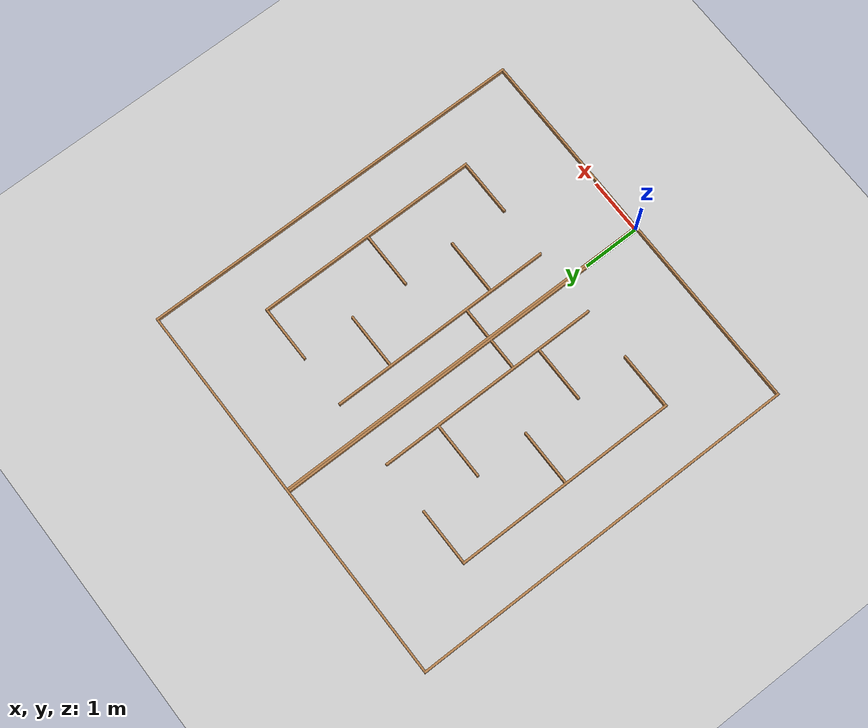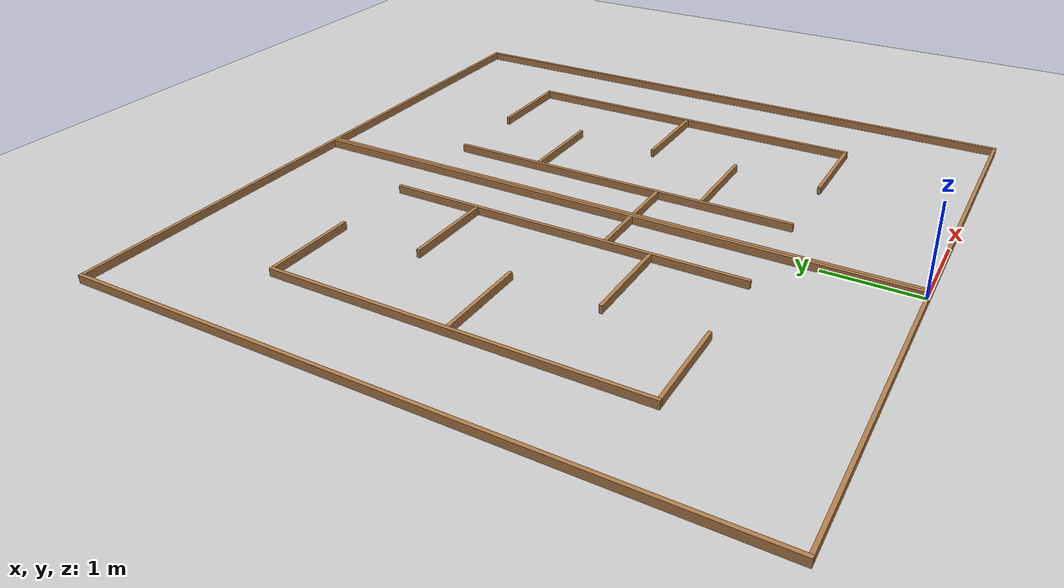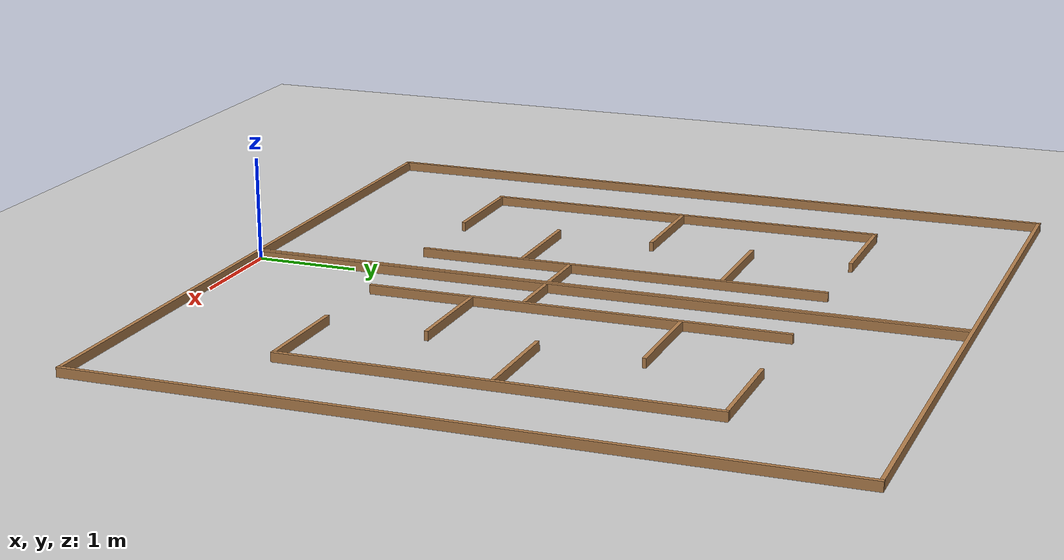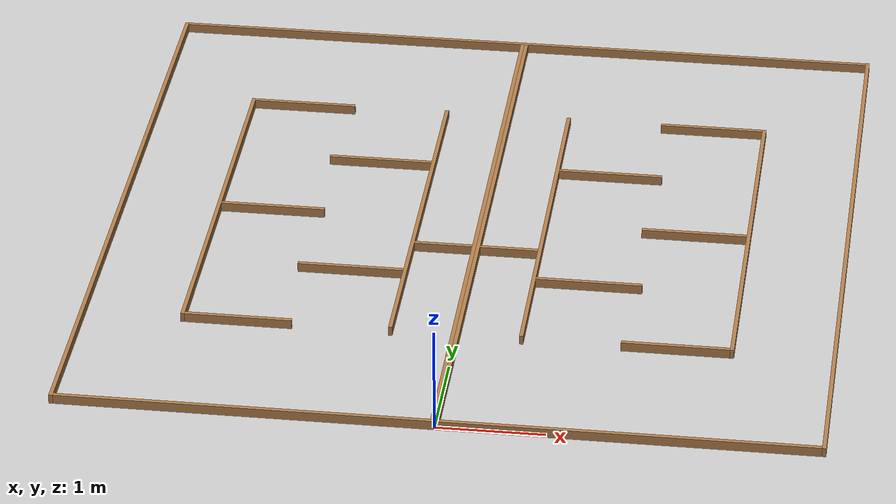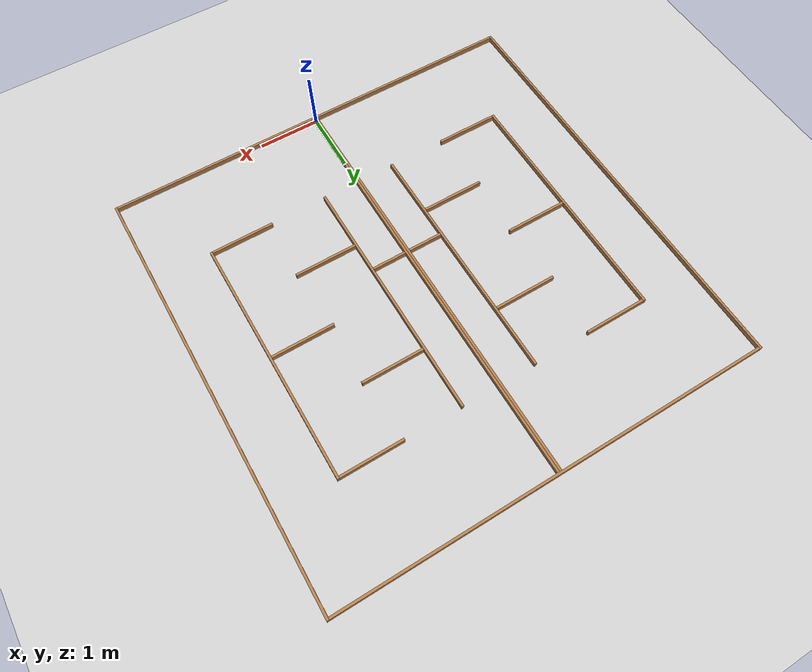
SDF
<?xml version="1.0"?>
<sdf version="1.6">
  <world name="default">
    <gravity>0 0 -9.8</gravity>

    <include>
      <uri>model://ground_plane</uri>
    </include>

    <include>
      <uri>model://sun</uri>
    </include>

    <scene>
      <shadows>false</shadows>
    </scene>

    <include>
      <name>frame0</name>
      <uri>model://haru25_frame0</uri>
      <!-- 中心座標 -->
      <pose>0.0 -0.019 0.0445 0 0 0 0 0</pose>
    </include>

    <include>
      <name>frame1</name>
      <uri>model://haru25_frame0</uri>
      <pose>0.0 6.943 0.0445 0 0 0 0 0</pose>
    </include>

    <include>
      <name>frame2</name>
      <uri>model://haru25_frame1</uri>
      <pose>-3.481 3.462 0.0445 0 0 0 0 0</pose>
    </include>

    <include>
      <name>frame3</name>
      <uri>model://haru25_frame1</uri>
      <pose>3.481 3.462 0.0445 0 0 0 0 0</pose>
    </include>

    <include>
      <name>frame4</name>
      <uri>model://haru25_frame2</uri>
      <pose>0.607 3.481 0.0445 0 0 0 0 0</pose>
    </include>

    <include>
      <name>frame5</name>
      <uri>model://haru25_frame2</uri>
      <pose>2.545 3.481 0.0445 0 0 0 0 0</pose>
    </include>

    <include>
      <name>frame6</name>
      <uri>model://haru25_frame3</uri>
      <pose>2.026 1.481 0.0445 0 0 0 0 0</pose>
    </include>

    <include>
      <name>frame7</name>
      <uri>model://haru25_frame3</uri>
      <pose>1.126 2.481 0.0445 0 0 0 0 0</pose>
    </include>

    <include>
      <name>frame8</name>
      <uri>model://haru25_frame3</uri>
      <pose>2.026 3.481 0.0445 0 0 0 0 0</pose>
    </include>

    <include>
      <name>frame9</name>
      <uri>model://haru25_frame3</uri>
      <pose>1.126 4.481 0.0445 0 0 0 0 0</pose>
    </include>

    <include>
      <name>frame10</name>
      <uri>model://haru25_frame3</uri>
      <pose>2.026 5.481 0.0445 0 0 0 0 0</pose>
    </include>

    <include>
      <name>frame11</name>
      <uri>model://haru25_frame4</uri>
      <pose>0.313 2.981 0.0445 0 0 0 0 0</pose>
    </include>

    <include>
      <name>frame12</name>
      <uri>model://haru25_frame5</uri>
      <pose>0.019 3.462 0.0445 0 0 0 0 0</pose>
    </include>

<!-- 左のフィールド -->

    <include>
      <name>frame13</name>
      <uri>model://haru25_frame2</uri>
      <pose>-0.607 3.481 0.0445 0 0 0 0 0</pose>
    </include>

    <include>
      <name>frame14</name>
      <uri>model://haru25_frame2</uri>
      <pose>-2.545 3.481 0.0445 0 0 0 0 0</pose>
    </include>

    <include>
      <name>frame15</name>
      <uri>model://haru25_frame3</uri>
      <pose>-2.026 1.481 0.0445 0 0 0 0 0</pose>
    </include>

    <include>
      <name>frame16</name>
      <uri>model://haru25_frame3</uri>
      <pose>-1.126 2.481 0.0445 0 0 0 0 0</pose>
    </include>

    <include>
      <name>frame17</name>
      <uri>model://haru25_frame3</uri>
      <pose>-2.026 3.481 0.0445 0 0 0 0 0</pose>
    </include>

    <include>
      <name>frame18</name>
      <uri>model://haru25_frame3</uri>
      <pose>-2.026 3.481 0.0445 0 0 0 0 0</pose>
    </include>

    <include>
      <name>frame19</name>
      <uri>model://haru25_frame3</uri>
      <pose>-1.126 4.481 0.0445 0 0 0 0 0</pose>
    </include>

    <include>
      <name>frame20</name>
      <uri>model://haru25_frame3</uri>
      <pose>-2.026 5.481 0.0445 0 0 0 0 0</pose>
    </include>

    <include>
      <name>frame21</name>
      <uri>model://haru25_frame4</uri>
      <pose>-0.313 2.981 0.0445 0 0 0 0 0</pose>
    </include>

    <include>
      <name>frame22</name>
      <uri>model://haru25_frame5</uri>
      <pose>-0.019 3.462 0.0445 0 0 0 0 0</pose>
    </include>

  </world>
</sdf>

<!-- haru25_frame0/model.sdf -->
<sdf version="1.6">
    <model name="frame">
        <static>true</static>
        <pose>0 0 0 0 0 0</pose>
        <link name="link">
            <collision name="collision">
            <!-- collisionは当たり判定 -->
                <geometry>
                    <box>
                    <!-- ｘの辺の長さ、ｙの辺の長さ、ｚの辺の長さ（ｍ） -->
                        <size>6.924 0.038 0.089</size>
                    </box>
                </geometry>
            </collision>
            <visual name="visual">
            <!-- visualは見た目 -->
                <geometry>
                    <box>
                        <size>6.924 0.038 0.089</size>
                    </box>
                </geometry>
                <material>
                    <script>
                        <uri>file://media/materials/scripts/gazebo.material</uri>
                        <name>Gazebo/Wood</name>
                    </script>
                </material>
            </visual>
        </link>
    </model>
</sdf>

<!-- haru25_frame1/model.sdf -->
<sdf version="1.6">
    <model name="frame">
        <static>true</static>
        <pose>0 0 0 0 0 0</pose>
        <link name="link">
            <collision name="collision">
                <geometry>
                    <box>
                        <size>0.038 7.0 0.089</size>
                    </box>
                </geometry>
            </collision>
            <visual name="visual">
                <geometry>
                    <box>
                        <size>0.038 7.0 0.089</size>
                    </box>
                </geometry>
                <material>
                    <script>
                        <uri>file://media/materials/scripts/gazebo.material</uri>
                        <name>Gazebo/Wood</name>
                    </script>
                </material>
            </visual>
        </link>
    </model>
</sdf>

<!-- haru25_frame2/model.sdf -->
<sdf version="1.6">
    <model name="frame">
        <static>true</static>
        <pose>0 0 0 0 0 0</pose>
        <link name="link">
            <collision name="collision">
                <geometry>
                    <box>
                        <size>0.038 4.038 0.089</size>
                    </box>
                </geometry>
            </collision>
            <visual name="visual">
                <geometry>
                    <box>
                        <size>0.038 4.038 0.089</size>
                    </box>
                </geometry>
                <material>
                    <script>
                        <uri>file://media/materials/scripts/gazebo.material</uri>
                        <name>Gazebo/Wood</name>
                    </script>
                </material>
            </visual>
        </link>
    </model>
</sdf>

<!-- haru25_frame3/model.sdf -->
<sdf version="1.6">
    <model name="frame">
        <static>true</static>
        <pose>0 0 0 0 0 0</pose>
        <link name="link">
            <collision name="collision">
                <geometry>
                    <box>
                        <size>1.0 0.038 0.089</size>
                    </box>
                </geometry>
            </collision>
            <visual name="visual">
                <geometry>
                    <box>
                        <size>1.0 0.038 0.089</size>
                    </box>
                </geometry>
                <material>
                    <script>
                        <uri>file://media/materials/scripts/gazebo.material</uri>
                        <name>Gazebo/Wood</name>
                    </script>
                </material>
            </visual>
        </link>
    </model>
</sdf>

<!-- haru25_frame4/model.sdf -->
<sdf version="1.6">
    <model name="frame">
        <static>true</static>
        <pose>0 0 0 0 0 0</pose>
        <link name="link">
            <collision name="collision">
                <geometry>
                    <box>
                        <size>0.55 0.038 0.089</size>
                    </box>
                </geometry>
            </collision>
            <visual name="visual">
                <geometry>
                    <box>
                        <size>0.55 0.038 0.089</size>
                    </box>
                </geometry>
                <material>
                    <script>
                        <uri>file://media/materials/scripts/gazebo.material</uri>
                        <name>Gazebo/Wood</name>
                    </script>
                </material>
            </visual>
        </link>
    </model>
</sdf>

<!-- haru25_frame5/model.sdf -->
<sdf version="1.6">
    <model name="frame">
        <static>true</static>
        <pose>0 0 0 0 0 0</pose>
        <link name="link">
            <collision name="collision">
                <geometry>
                    <box>
                        <size>0.038 6.924 0.089</size>
                    </box>
                </geometry>
            </collision>
            <visual name="visual">
                <geometry>
                    <box>
                        <size>0.038 6.924 0.089</size>
                    </box>
                </geometry>
                <material>
                    <script>
                        <uri>file://media/materials/scripts/gazebo.material</uri>
                        <name>Gazebo/Wood</name>
                    </script>
                </material>
            </visual>
        </link>
    </model>
</sdf>
